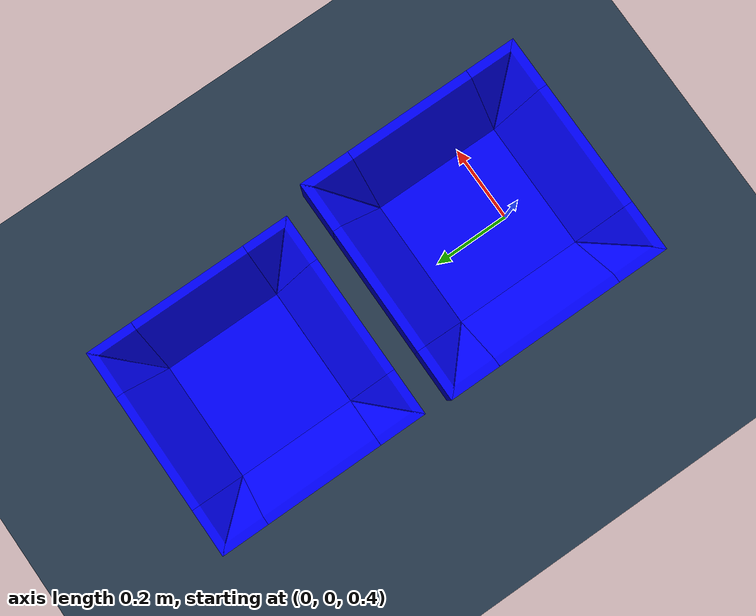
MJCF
<mujoco model="steeped_bins_arena">
  <asset>
    <mesh scale="0.01 0.01 0.01" file="meshes/steeped_bins.obj/steeped_bins.obj_0.stl" name="steeped_bins.obj_0"/>
    <mesh scale="0.01 0.01 0.01" file="meshes/steeped_bins.obj/steeped_bins.obj_1.stl" name="steeped_bins.obj_1"/>
    <mesh scale="0.01 0.01 0.01" file="meshes/steeped_bins.obj/steeped_bins.obj_2.stl" name="steeped_bins.obj_2"/>
    <mesh scale="0.01 0.01 0.01" file="meshes/steeped_bins.obj/steeped_bins.obj_3.stl" name="steeped_bins.obj_3"/>
    <mesh scale="0.01 0.01 0.01" file="meshes/steeped_bins.obj/steeped_bins.obj_4.stl" name="steeped_bins.obj_4"/>
    <mesh scale="0.01 0.01 0.01" file="meshes/steeped_bins.obj/steeped_bins.obj_5.stl" name="steeped_bins.obj_5"/>
    <mesh scale="0.01 0.01 0.01" file="meshes/steeped_bins.obj/steeped_bins.obj_6.stl" name="steeped_bins.obj_6"/>
    <mesh scale="0.01 0.01 0.01" file="meshes/steeped_bins.obj/steeped_bins.obj_7.stl" name="steeped_bins.obj_7"/>
    <mesh scale="0.01 0.01 0.01" file="meshes/steeped_bins.obj/steeped_bins.obj_8.stl" name="steeped_bins.obj_8"/>
    <mesh scale="0.01 0.01 0.01" file="meshes/steeped_bins.obj/steeped_bins.obj_9.stl" name="steeped_bins.obj_9"/>
    <mesh scale="0.01 0.01 0.01" file="meshes/steeped_bins.obj/steeped_bins.obj_10.stl" name="steeped_bins.obj_10"/>
    <mesh scale="0.01 0.01 0.01" file="meshes/steeped_bins.obj/steeped_bins.obj_11.stl" name="steeped_bins.obj_11"/>
    <mesh scale="0.01 0.01 0.01" file="meshes/steeped_bins.obj/steeped_bins.obj_12.stl" name="steeped_bins.obj_12"/>
    <texture builtin="gradient" height="256" rgb1=".9 .9 1." rgb2=".2 .3 .4" type="skybox" width="256"/>
    <texture builtin="checker" height="512" name="texplane" rgb1=".2 .3 .4" rgb2=".1 0.15 0.2" type="2d" width="512"/>
    <texture file="../textures/light-wood.png" type="2d" name="tex-light-wood"/>
    <texture file="../textures/dark-wood.png" type="2d" name="tex-dark-wood"/>
    <material name="light-wood" reflectance="0.5" texrepeat="15 15" texture="tex-light-wood" texuniform="true"/>
    <material name="dark-wood" reflectance="0.5" texrepeat="5 5" texture="tex-dark-wood" texuniform="true"/>
    <material name="floorplane" reflectance="0.5" texrepeat="1 1" texture="texplane" texuniform="true"/>
  </asset>
  <worldbody>
    <geom condim="3" material="floorplane" name="floor" pos="0 0 0" size="3 3 .125" type="plane"/>
    <geom rgba="0 0 0 0" pos="0.1 0.5 0.0" size="0.5 1 .2" type="plane"/>
    <body name="bin1" pos="0.0 0.12 0.67">
      <geom pos="0 0 0" type="mesh" mesh="steeped_bins.obj_0" friction="1.5 0.3 0.1" rgba="0 0 1 1"/>
      <geom pos="0 0 0" type="mesh" mesh="steeped_bins.obj_0" conaffinity="0" contype="0" group="1" material="light-wood"/>
      <geom pos="0 0 0" type="mesh" mesh="steeped_bins.obj_1" friction="1.5 0.3 0.1" rgba="0 0 1 1"/>
      <geom pos="0 0 0" type="mesh" mesh="steeped_bins.obj_1" conaffinity="0" contype="0" group="1" material="light-wood"/>
      <geom pos="0 0 0" type="mesh" mesh="steeped_bins.obj_2" friction="1.5 0.3 0.1" rgba="0 0 1 1"/>
      <geom pos="0 0 0" type="mesh" mesh="steeped_bins.obj_2" conaffinity="0" contype="0" group="1" material="light-wood"/>
      <geom pos="0 0 0" type="mesh" mesh="steeped_bins.obj_3" friction="1.5 0.3 0.1" rgba="0 0 1 1"/>
      <geom pos="0 0 0" type="mesh" mesh="steeped_bins.obj_3" conaffinity="0" contype="0" group="1" material="light-wood"/>
      <geom pos="0 0 0" type="mesh" mesh="steeped_bins.obj_4" friction="1.5 0.3 0.1" rgba="0 0 1 1"/>
      <geom pos="0 0 0" type="mesh" mesh="steeped_bins.obj_4" conaffinity="0" contype="0" group="1" material="light-wood"/>
      <geom pos="0 0 0" type="mesh" mesh="steeped_bins.obj_5" friction="1.5 0.3 0.1" rgba="0 0 1 1"/>
      <geom pos="0 0 0" type="mesh" mesh="steeped_bins.obj_5" conaffinity="0" contype="0" group="1" material="light-wood"/>
      <geom pos="0 0 0" type="mesh" mesh="steeped_bins.obj_6" friction="1.5 0.3 0.1" rgba="0 0 1 1"/>
      <geom pos="0 0 0" type="mesh" mesh="steeped_bins.obj_6" conaffinity="0" contype="0" group="1" material="light-wood"/>
      <geom pos="0 0 0" type="mesh" mesh="steeped_bins.obj_7" friction="1.5 0.3 0.1" rgba="0 0 1 1"/>
      <geom pos="0 0 0" type="mesh" mesh="steeped_bins.obj_7" conaffinity="0" contype="0" group="1" material="light-wood"/>
      <geom pos="0 0 0" type="mesh" mesh="steeped_bins.obj_8" friction="1.5 0.3 0.1" rgba="0 0 1 1"/>
      <geom pos="0 0 0" type="mesh" mesh="steeped_bins.obj_8" conaffinity="0" contype="0" group="1" material="light-wood"/>
      <geom pos="0 0 0" type="mesh" mesh="steeped_bins.obj_9" friction="1.5 0.3 0.1" rgba="0 0 1 1"/>
      <geom pos="0 0 0" type="mesh" mesh="steeped_bins.obj_9" conaffinity="0" contype="0" group="1" material="light-wood"/>
      <geom pos="0 0 0" type="mesh" mesh="steeped_bins.obj_10" friction="1.5 0.3 0.1" rgba="0 0 1 1"/>
      <geom pos="0 0 0" type="mesh" mesh="steeped_bins.obj_10" conaffinity="0" contype="0" group="1" material="light-wood"/>
      <geom pos="0 0 0" type="mesh" mesh="steeped_bins.obj_11" friction="1.5 0.3 0.1" rgba="0 0 1 1"/>
      <geom pos="0 0 0" type="mesh" mesh="steeped_bins.obj_11" conaffinity="0" contype="0" group="1" material="light-wood"/>
      <geom pos="0 0 0" type="mesh" mesh="steeped_bins.obj_12" friction="1.5 0.3 0.1" rgba="0 0 1 1"/>
      <geom pos="0 0 0" type="mesh" mesh="steeped_bins.obj_12" conaffinity="0" contype="0" group="1" material="light-wood"/>
    </body>
    <body name="bin2" pos="0.0 0.71 0.47">
      <geom pos="0 0 0" type="mesh" mesh="steeped_bins.obj_0" friction="1.5 0.3 0.1" rgba="0 0 1 1"/>
      <geom pos="0 0 0" type="mesh" mesh="steeped_bins.obj_0" conaffinity="0" contype="0" group="1" material="dark-wood"/>
      <geom pos="0 0 0" type="mesh" mesh="steeped_bins.obj_1" friction="1.5 0.3 0.1" rgba="0 0 1 1"/>
      <geom pos="0 0 0" type="mesh" mesh="steeped_bins.obj_1" conaffinity="0" contype="0" group="1" material="dark-wood"/>
      <geom pos="0 0 0" type="mesh" mesh="steeped_bins.obj_2" friction="1.5 0.3 0.1" rgba="0 0 1 1"/>
      <geom pos="0 0 0" type="mesh" mesh="steeped_bins.obj_2" conaffinity="0" contype="0" group="1" material="dark-wood"/>
      <geom pos="0 0 0" type="mesh" mesh="steeped_bins.obj_3" friction="1.5 0.3 0.1" rgba="0 0 1 1"/>
      <geom pos="0 0 0" type="mesh" mesh="steeped_bins.obj_3" conaffinity="0" contype="0" group="1" material="dark-wood"/>
      <geom pos="0 0 0" type="mesh" mesh="steeped_bins.obj_4" friction="1.5 0.3 0.1" rgba="0 0 1 1"/>
      <geom pos="0 0 0" type="mesh" mesh="steeped_bins.obj_4" conaffinity="0" contype="0" group="1" material="dark-wood"/>
      <geom pos="0 0 0" type="mesh" mesh="steeped_bins.obj_5" friction="1.5 0.3 0.1" rgba="0 0 1 1"/>
      <geom pos="0 0 0" type="mesh" mesh="steeped_bins.obj_5" conaffinity="0" contype="0" group="1" material="dark-wood"/>
      <geom pos="0 0 0" type="mesh" mesh="steeped_bins.obj_6" friction="1.5 0.3 0.1" rgba="0 0 1 1"/>
      <geom pos="0 0 0" type="mesh" mesh="steeped_bins.obj_6" conaffinity="0" contype="0" group="1" material="dark-wood"/>
      <geom pos="0 0 0" type="mesh" mesh="steeped_bins.obj_7" friction="1.5 0.3 0.1" rgba="0 0 1 1"/>
      <geom pos="0 0 0" type="mesh" mesh="steeped_bins.obj_7" conaffinity="0" contype="0" group="1" material="dark-wood"/>
      <geom pos="0 0 0" type="mesh" mesh="steeped_bins.obj_8" friction="1.5 0.3 0.1" rgba="0 0 1 1"/>
      <geom pos="0 0 0" type="mesh" mesh="steeped_bins.obj_8" conaffinity="0" contype="0" group="1" material="dark-wood"/>
      <geom pos="0 0 0" type="mesh" mesh="steeped_bins.obj_9" friction="1.5 0.3 0.1" rgba="0 0 1 1"/>
      <geom pos="0 0 0" type="mesh" mesh="steeped_bins.obj_9" conaffinity="0" contype="0" group="1" material="dark-wood"/>
      <geom pos="0 0 0" type="mesh" mesh="steeped_bins.obj_10" friction="1.5 0.3 0.1" rgba="0 0 1 1"/>
      <geom pos="0 0 0" type="mesh" mesh="steeped_bins.obj_10" conaffinity="0" contype="0" group="1" material="dark-wood"/>
      <geom pos="0 0 0" type="mesh" mesh="steeped_bins.obj_11" friction="1.5 0.3 0.1" rgba="0 0 1 1"/>
      <geom pos="0 0 0" type="mesh" mesh="steeped_bins.obj_11" conaffinity="0" contype="0" group="1" material="dark-wood"/>
      <geom pos="0 0 0" type="mesh" mesh="steeped_bins.obj_12" friction="1.5 0.3 0.1" rgba="0 0 1 1"/>
      <geom pos="0 0 0" type="mesh" mesh="steeped_bins.obj_12" conaffinity="0" contype="0" group="1" material="dark-wood"/>
    </body>
    <light diffuse=".8 .8 .8" dir="0 -.15 -1" directional="false" pos="1 1 4.0" specular="0.3 0.3 0.3" castshadow="false"/>
    <light diffuse=".8 .8 .8" dir="0 -.15 -1" directional="false" pos="-3. -3. 4.0" specular="0.3 0.3 0.3" castshadow="false"/>
    <!-- front view -->
    <camera mode="fixed" name="frontview" pos="1.6 0.4 1.45" quat="0.56 0.43 0.43 0.56"/>
    <!-- bird view -->
    <camera mode="fixed" name="birdview" pos="-0.2 0.4 3.0" quat="0.7071 0 0 0.7071"/>
    <!-- agent view -->
    <camera mode="fixed" name="agentview" pos="1.0 0.4 1.75" quat="0.653 0.271 0.271 0.653"/>
    <camera mode="fixed" name="extra_camera" pos="0.1 0.12 1.2" quat="0 0 0 1"/>
  </worldbody>
</mujoco>
